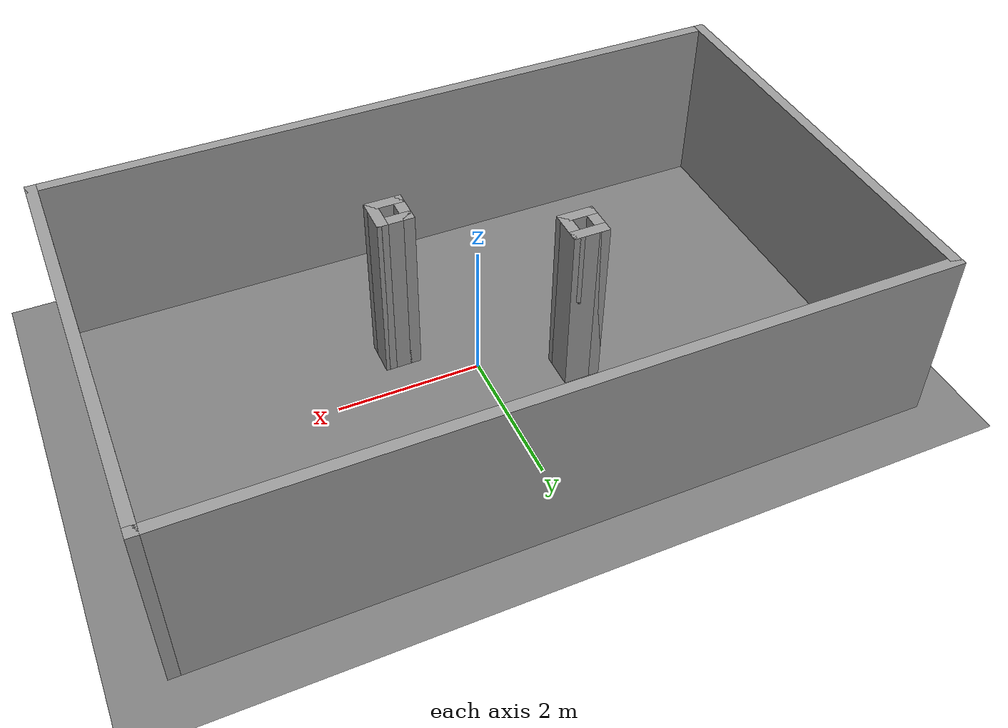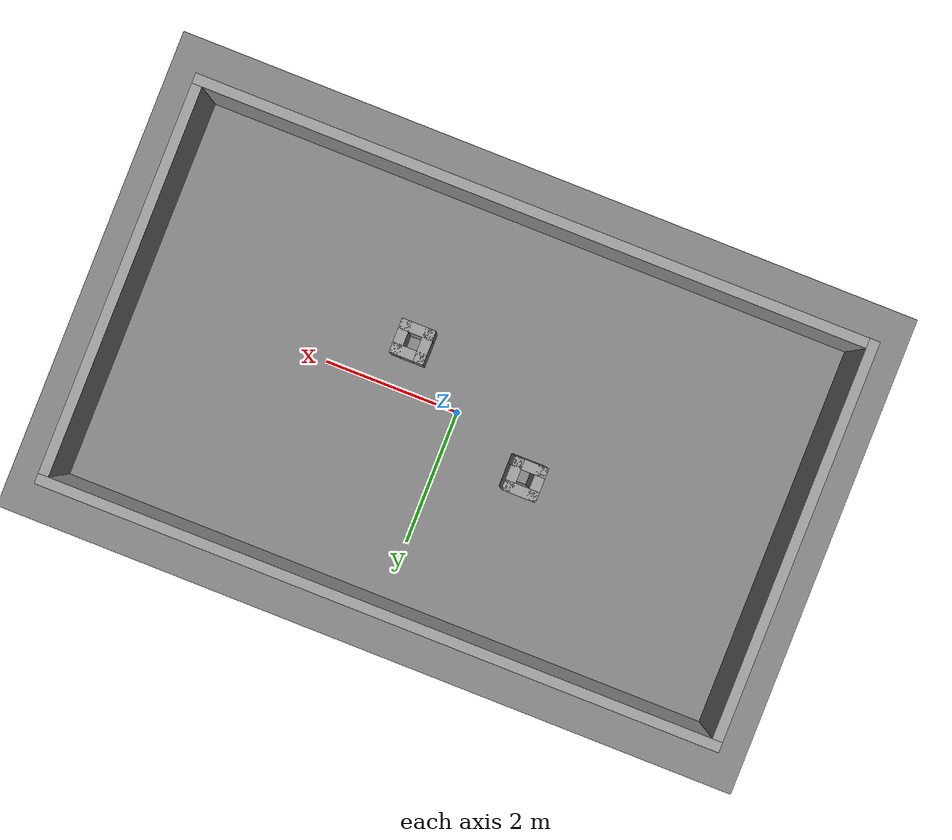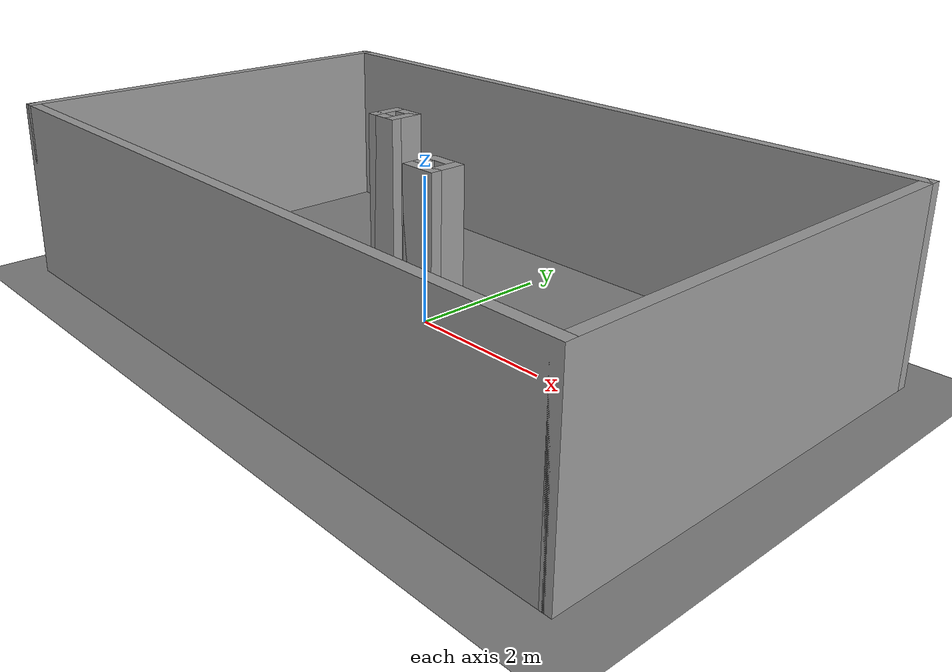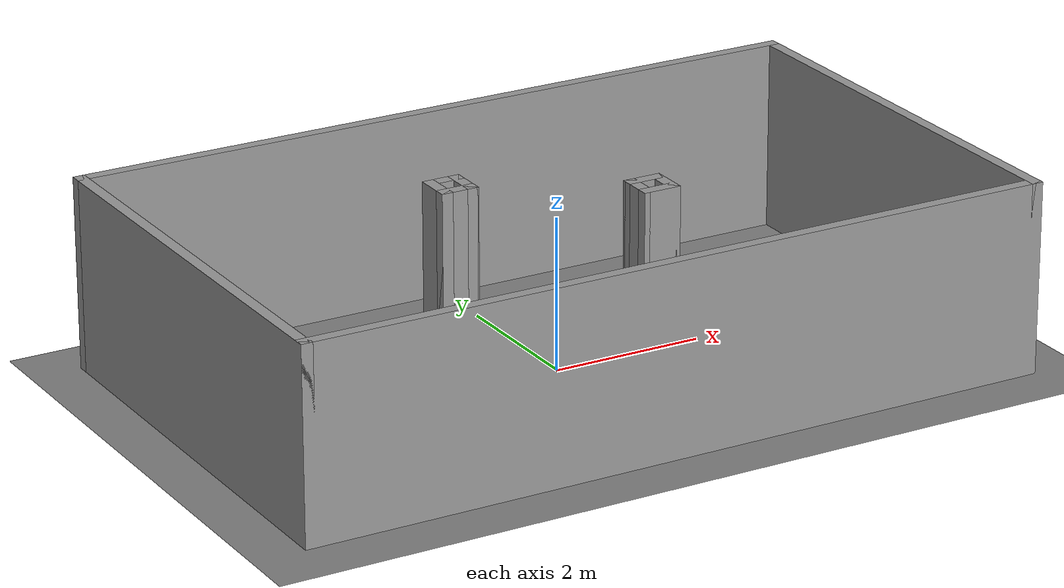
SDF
<?xml version="1.0" ?>
<sdf version="1.7">
  <world name="test_1_world">
    <!-- 光源（本地，无需联网） -->
    <light name="sun" type="directional">
      <pose>0 0 10 0 0 0</pose>
      <cast_shadows>true</cast_shadows>
    </light>

    <!-- 地面（本地，无需联网） -->
    <model name="ground_plane">
      <static>true</static>
      <link name="link">
        <collision name="collision">
          <geometry><plane><normal>0 0 1</normal><size>50 50</size></plane></geometry>
        </collision>
        <visual name="visual">
          <geometry><plane><normal>0 0 1</normal><size>50 50</size></plane></geometry>
          <material><ambient>0.5 0.5 0.5 1</ambient></material>
        </visual>
      </link>
    </model>

    <!-- 导入 Building Editor 创建的 Test_1 墙壁模型 -->
    <include>
      <uri>model://Test_1</uri>
      <pose>0 0 0 0 0 0</pose>
    </include>
  </world>
</sdf>

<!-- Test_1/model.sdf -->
<sdf version='1.7'>
  <model name='Test_1'>
    <pose>-3.415 -0.775 0 0 -0 0</pose>
    <link name='Wall_1'>
      <collision name='Wall_1_Collision'>
        <geometry>
          <box>
            <size>10 0.15 2.5</size>
          </box>
        </geometry>
        <pose>0 0 1.25 0 -0 0</pose>
      </collision>
      <visual name='Wall_1_Visual'>
        <pose>0 0 1.25 0 -0 0</pose>
        <geometry>
          <box>
            <size>10 0.15 2.5</size>
          </box>
        </geometry>
        <material>
          <script>
            <uri>file://media/materials/scripts/gazebo.material</uri>
            <name>Gazebo/Grey</name>
          </script>
          <ambient>1 1 1 1</ambient>
        </material>
        <meta>
          <layer>0</layer>
        </meta>
      </visual>
      <pose>0 2.925 0 0 -0 3.14159</pose>
    </link>
    <link name='Wall_10'>
      <collision name='Wall_10_Collision'>
        <geometry>
          <box>
            <size>0.5 0.15 2.5</size>
          </box>
        </geometry>
        <pose>0 0 1.25 0 -0 0</pose>
      </collision>
      <visual name='Wall_10_Visual'>
        <pose>0 0 1.25 0 -0 0</pose>
        <geometry>
          <box>
            <size>0.5 0.15 2.5</size>
          </box>
        </geometry>
        <material>
          <script>
            <uri>file://media/materials/scripts/gazebo.material</uri>
            <name>Gazebo/Grey</name>
          </script>
          <ambient>1 1 1 1</ambient>
        </material>
        <meta>
          <layer>0</layer>
        </meta>
      </visual>
      <pose>0.92 -0.855 0 0 -0 3.14159</pose>
    </link>
    <link name='Wall_12'>
      <collision name='Wall_12_Collision'>
        <geometry>
          <box>
            <size>0.5 0.15 2.5</size>
          </box>
        </geometry>
        <pose>0 0 1.25 0 -0 0</pose>
      </collision>
      <visual name='Wall_12_Visual'>
        <pose>0 0 1.25 0 -0 0</pose>
        <geometry>
          <box>
            <size>0.5 0.15 2.5</size>
          </box>
        </geometry>
        <material>
          <script>
            <uri>file://media/materials/scripts/gazebo.material</uri>
            <name>Gazebo/Grey</name>
          </script>
          <ambient>1 1 1 1</ambient>
        </material>
        <meta>
          <layer>0</layer>
        </meta>
      </visual>
      <pose>-1.19 0.675 0 0 -0 0</pose>
    </link>
    <link name='Wall_13'>
      <collision name='Wall_13_Collision'>
        <geometry>
          <box>
            <size>0.5 0.15 2.5</size>
          </box>
        </geometry>
        <pose>0 0 1.25 0 -0 0</pose>
      </collision>
      <visual name='Wall_13_Visual'>
        <pose>0 0 1.25 0 -0 0</pose>
        <geometry>
          <box>
            <size>0.5 0.15 2.5</size>
          </box>
        </geometry>
        <material>
          <script>
            <uri>file://media/materials/scripts/gazebo.material</uri>
            <name>Gazebo/Grey</name>
          </script>
          <ambient>1 1 1 1</ambient>
        </material>
        <meta>
          <layer>0</layer>
        </meta>
      </visual>
      <pose>-1.015 0.5 0 0 -0 -1.5708</pose>
    </link>
    <link name='Wall_14'>
      <collision name='Wall_14_Collision'>
        <geometry>
          <box>
            <size>0.5 0.15 2.5</size>
          </box>
        </geometry>
        <pose>0 0 1.25 0 -0 0</pose>
      </collision>
      <visual name='Wall_14_Visual'>
        <pose>0 0 1.25 0 -0 0</pose>
        <geometry>
          <box>
            <size>0.5 0.15 2.5</size>
          </box>
        </geometry>
        <material>
          <script>
            <uri>file://media/materials/scripts/gazebo.material</uri>
            <name>Gazebo/Grey</name>
          </script>
          <ambient>1 1 1 1</ambient>
        </material>
        <meta>
          <layer>0</layer>
        </meta>
      </visual>
      <pose>-1.19 0.325 0 0 -0 3.14159</pose>
    </link>
    <link name='Wall_15'>
      <collision name='Wall_15_Collision'>
        <geometry>
          <box>
            <size>0.5 0.15 2.5</size>
          </box>
        </geometry>
        <pose>0 0 1.25 0 -0 0</pose>
      </collision>
      <visual name='Wall_15_Visual'>
        <pose>0 0 1.25 0 -0 0</pose>
        <geometry>
          <box>
            <size>0.5 0.15 2.5</size>
          </box>
        </geometry>
        <material>
          <script>
            <uri>file://media/materials/scripts/gazebo.material</uri>
            <name>Gazebo/Grey</name>
          </script>
          <ambient>1 1 1 1</ambient>
        </material>
        <meta>
          <layer>0</layer>
        </meta>
      </visual>
      <pose>-1.365 0.5 0 0 -0 1.5708</pose>
    </link>
    <link name='Wall_2'>
      <collision name='Wall_2_Collision'>
        <geometry>
          <box>
            <size>6 0.15 2.5</size>
          </box>
        </geometry>
        <pose>0 0 1.25 0 -0 0</pose>
      </collision>
      <visual name='Wall_2_Visual'>
        <pose>0 0 1.25 0 -0 0</pose>
        <geometry>
          <box>
            <size>6 0.15 2.5</size>
          </box>
        </geometry>
        <material>
          <script>
            <uri>file://media/materials/scripts/gazebo.material</uri>
            <name>Gazebo/Grey</name>
          </script>
          <ambient>1 1 1 1</ambient>
        </material>
        <meta>
          <layer>0</layer>
        </meta>
      </visual>
      <pose>-4.925 0 0 0 -0 -1.5708</pose>
    </link>
    <link name='Wall_3'>
      <collision name='Wall_3_Collision'>
        <geometry>
          <box>
            <size>10 0.15 2.5</size>
          </box>
        </geometry>
        <pose>0 0 1.25 0 -0 0</pose>
      </collision>
      <visual name='Wall_3_Visual'>
        <pose>0 0 1.25 0 -0 0</pose>
        <geometry>
          <box>
            <size>10 0.15 2.5</size>
          </box>
        </geometry>
        <material>
          <script>
            <uri>file://media/materials/scripts/gazebo.material</uri>
            <name>Gazebo/Grey</name>
          </script>
          <ambient>1 1 1 1</ambient>
        </material>
        <meta>
          <layer>0</layer>
        </meta>
      </visual>
      <pose>0 -2.925 0 0 -0 0</pose>
    </link>
    <link name='Wall_4'>
      <collision name='Wall_4_Collision'>
        <geometry>
          <box>
            <size>6 0.15 2.5</size>
          </box>
        </geometry>
        <pose>0 0 1.25 0 -0 0</pose>
      </collision>
      <visual name='Wall_4_Visual'>
        <pose>0 0 1.25 0 -0 0</pose>
        <geometry>
          <box>
            <size>6 0.15 2.5</size>
          </box>
        </geometry>
        <material>
          <script>
            <uri>file://media/materials/scripts/gazebo.material</uri>
            <name>Gazebo/Grey</name>
          </script>
          <ambient>1 1 1 1</ambient>
        </material>
        <meta>
          <layer>0</layer>
        </meta>
      </visual>
      <pose>4.925 0 0 0 -0 1.5708</pose>
    </link>
    <link name='Wall_7'>
      <collision name='Wall_7_Collision'>
        <geometry>
          <box>
            <size>0.5 0.15 2.5</size>
          </box>
        </geometry>
        <pose>0 0 1.25 0 -0 0</pose>
      </collision>
      <visual name='Wall_7_Visual'>
        <pose>0 0 1.25 0 -0 0</pose>
        <geometry>
          <box>
            <size>0.5 0.15 2.5</size>
          </box>
        </geometry>
        <material>
          <script>
            <uri>file://media/materials/scripts/gazebo.material</uri>
            <name>Gazebo/Grey</name>
          </script>
          <ambient>1 1 1 1</ambient>
        </material>
        <meta>
          <layer>0</layer>
        </meta>
      </visual>
      <pose>0.745 -0.68 0 0 -0 1.5708</pose>
    </link>
    <link name='Wall_8'>
      <collision name='Wall_8_Collision'>
        <geometry>
          <box>
            <size>0.5 0.15 2.5</size>
          </box>
        </geometry>
        <pose>0 0 1.25 0 -0 0</pose>
      </collision>
      <visual name='Wall_8_Visual'>
        <pose>0 0 1.25 0 -0 0</pose>
        <geometry>
          <box>
            <size>0.5 0.15 2.5</size>
          </box>
        </geometry>
        <material>
          <script>
            <uri>file://media/materials/scripts/gazebo.material</uri>
            <name>Gazebo/Grey</name>
          </script>
          <ambient>1 1 1 1</ambient>
        </material>
        <meta>
          <layer>0</layer>
        </meta>
      </visual>
      <pose>0.92 -0.505 0 0 -0 0</pose>
    </link>
    <link name='Wall_9'>
      <collision name='Wall_9_Collision'>
        <geometry>
          <box>
            <size>0.5 0.15 2.5</size>
          </box>
        </geometry>
        <pose>0 0 1.25 0 -0 0</pose>
      </collision>
      <visual name='Wall_9_Visual'>
        <pose>0 0 1.25 0 -0 0</pose>
        <geometry>
          <box>
            <size>0.5 0.15 2.5</size>
          </box>
        </geometry>
        <material>
          <script>
            <uri>file://media/materials/scripts/gazebo.material</uri>
            <name>Gazebo/Grey</name>
          </script>
          <ambient>1 1 1 1</ambient>
        </material>
        <meta>
          <layer>0</layer>
        </meta>
      </visual>
      <pose>1.095 -0.68 0 0 -0 -1.5708</pose>
    </link>
    <static>1</static>
  </model>
</sdf>
